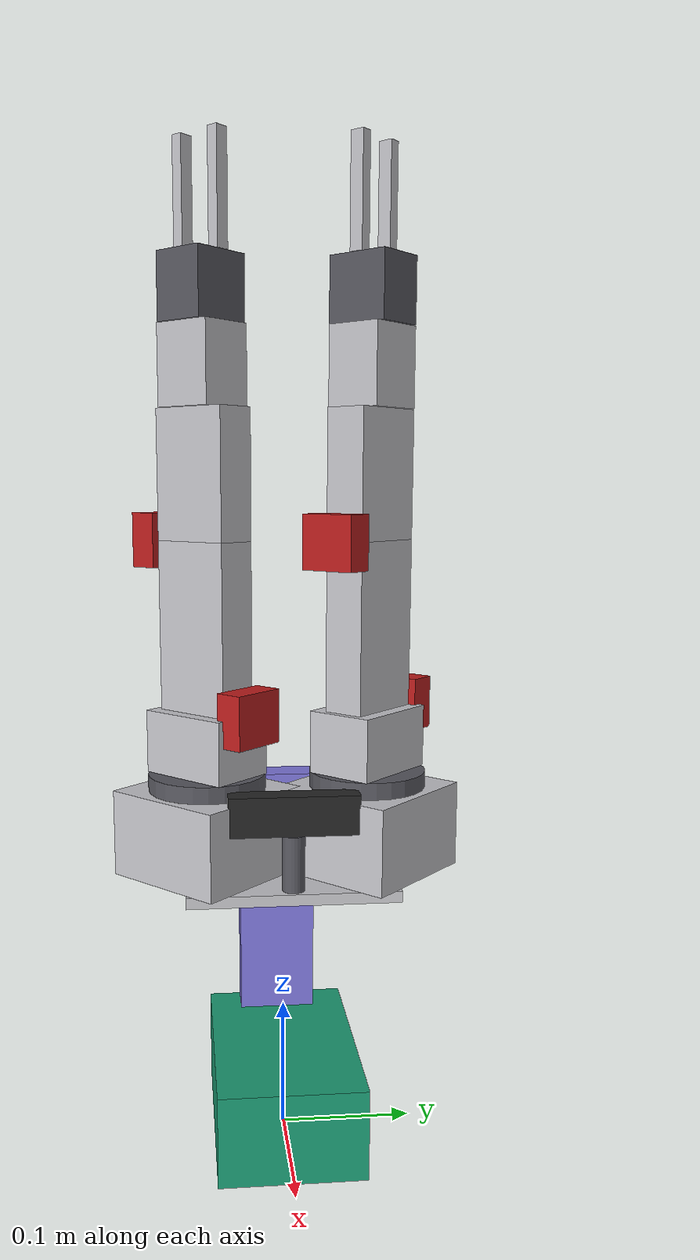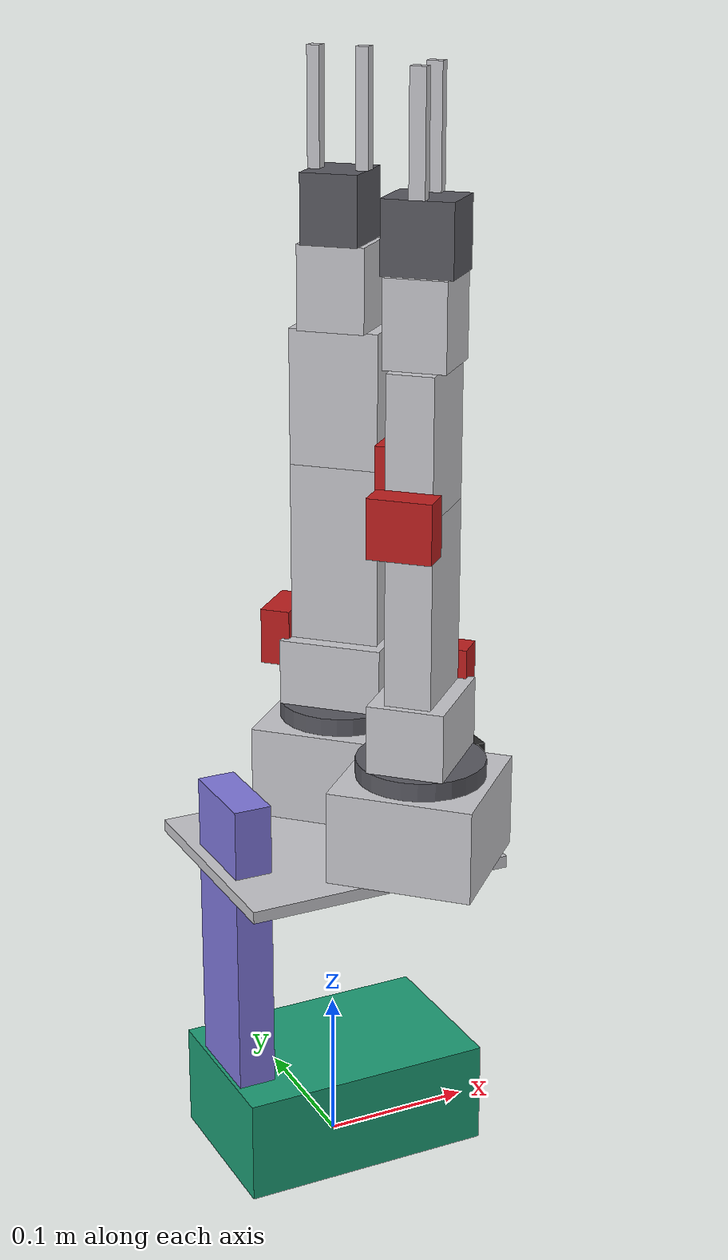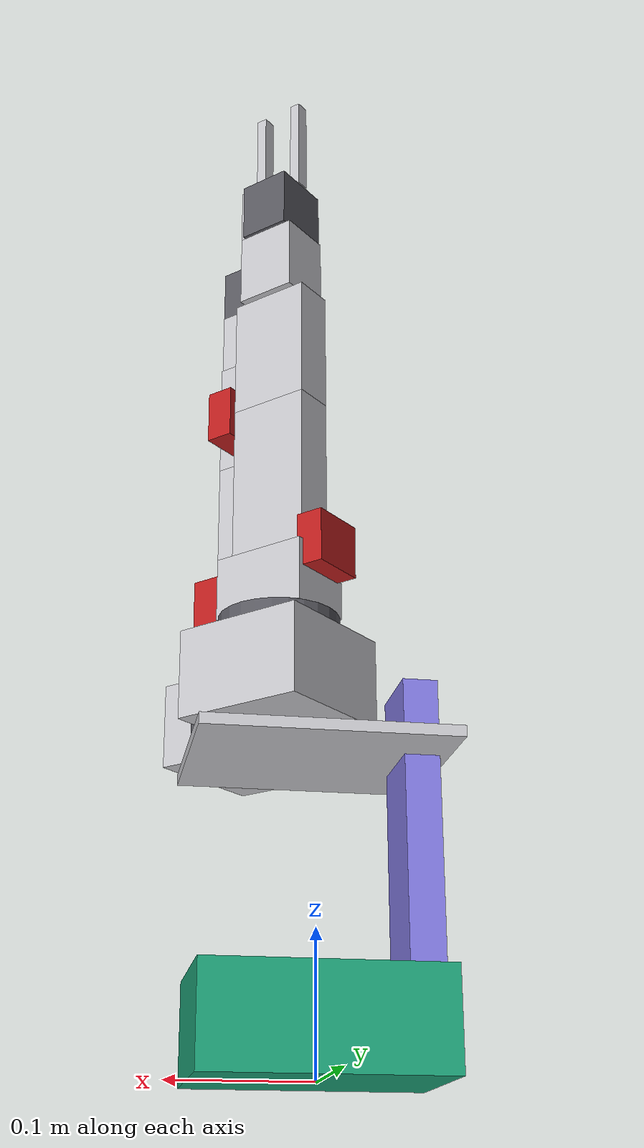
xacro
<?xml version="1.0"?>
<robot name="soma" xmlns:xacro="http://www.ros.org/wiki/xacro">
  <xacro:include filename="$(find soma_description)/urdf/soma_bench.urdf.xacro"/>
  <xacro:include filename="$(find soma_description)/urdf/soma_control.xacro"/>
  <xacro:soma_ros2_control/>
</robot>

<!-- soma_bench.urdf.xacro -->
<robot name="soma" xmlns:xacro="http://www.ros.org/wiki/xacro">

  <xacro:include filename="$(find soma_description)/urdf/materials.xacro"/>
  <xacro:include filename="$(find soma_description)/urdf/soma_arm.xacro"/>
  <xacro:include filename="$(find soma_description)/urdf/soma_torso.xacro"/>

  <link name="world"/>

  <xacro:soma_torso parent="world">
    <origin xyz="0 0 0" rpy="0 0 0"/>
  </xacro:soma_torso>

</robot>

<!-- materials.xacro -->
<robot xmlns:xacro="http://www.ros.org/wiki/xacro">
  <!-- SOMA palette. Kept in one place so every model looks the same. -->
  <material name="aluminum">
    <color rgba="0.78 0.78 0.80 1.0"/>
  </material>
  <material name="servo_red">
    <color rgba="0.75 0.12 0.12 1.0"/>
  </material>
  <material name="matte_black">
    <color rgba="0.15 0.15 0.15 1.0"/>
  </material>
  <material name="dark_gray">
    <color rgba="0.35 0.35 0.38 1.0"/>
  </material>
  <material name="soma_teal">
    <color rgba="0.11 0.62 0.46 1.0"/>
  </material>
  <material name="l16_purple">
    <color rgba="0.50 0.47 0.87 1.0"/>
  </material>
</robot>

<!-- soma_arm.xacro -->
<robot xmlns:xacro="http://www.ros.org/wiki/xacro">

  <!-- ==================== dimensions [calibrate] ==================== -->
  <xacro:property name="base_lx"        value="0.095"/>  <!-- base box, houses servo A -->
  <xacro:property name="base_ly"        value="0.095"/>
  <xacro:property name="base_lz"        value="0.062"/>
  <xacro:property name="turntable_r"    value="0.042"/>  <!-- disc on the slew bearing -->
  <xacro:property name="turntable_h"    value="0.012"/>
  <xacro:property name="shoulder_off_z" value="0.045"/>  <!-- disc to shoulder axis -->
  <xacro:property name="upper_len"      value="0.120"/>  <!-- shoulder to elbow -->
  <xacro:property name="fore_len"       value="0.090"/>  <!-- elbow to wrist pitch -->
  <xacro:property name="wrist_len"      value="0.055"/>  <!-- wrist pitch to roll flange -->
  <xacro:property name="gripper_base_h" value="0.045"/>  <!-- roll flange to finger axis -->
  <xacro:property name="finger_len"     value="0.075"/>  <!-- geared finger -->
  <xacro:property name="finger_sep"     value="0.024"/>  <!-- gear axis separation -->
  <xacro:property name="plate_w"        value="0.030"/>  <!-- link plate width -->
  <xacro:property name="plate_t"        value="0.060"/>  <!-- plate pair depth -->

  <!-- MG996R class servo, 40x20 body -->
  <xacro:property name="servo_lx" value="0.041"/>
  <xacro:property name="servo_ly" value="0.020"/>
  <xacro:property name="servo_lz" value="0.038"/>

  <!-- Limits: 180 degree servos, so +/- 90 from center. These MUST stay in
       sync with SERVO_MAP in soma_driver/servo_map.py. -->
  <xacro:property name="lim"        value="${pi/2}"/>
  <xacro:property name="effort_nm"  value="1.0"/>   <!-- MG996R ~10 kg.cm = 0.98 N.m -->
  <xacro:property name="vel_rads"   value="3.0"/>   <!-- ~0.17 s/60 deg plus margin -->

  <!-- ==================== inertia macros ==================== -->
  <xacro:macro name="box_inertia" params="m x y z">
    <inertial>
      <mass value="${m}"/>
      <inertia ixx="${m*(y*y+z*z)/12.0}" iyy="${m*(x*x+z*z)/12.0}"
               izz="${m*(x*x+y*y)/12.0}" ixy="0" ixz="0" iyz="0"/>
    </inertial>
  </xacro:macro>
  <xacro:macro name="cylinder_inertia" params="m r h">
    <inertial>
      <mass value="${m}"/>
      <inertia ixx="${m*(3*r*r+h*h)/12.0}" iyy="${m*(3*r*r+h*h)/12.0}"
               izz="${m*r*r/2.0}" ixy="0" ixz="0" iyz="0"/>
    </inertial>
  </xacro:macro>

  <!-- visual of a 40x20 servo (red box) -->
  <xacro:macro name="servo_visual" params="xyz rpy:='0 0 0'">
    <visual>
      <origin xyz="${xyz}" rpy="${rpy}"/>
      <geometry><box size="${servo_lx} ${servo_ly} ${servo_lz}"/></geometry>
      <material name="servo_red"/>
    </visual>
  </xacro:macro>

  <!-- ==================== the arm macro ==================== -->
  <xacro:macro name="soma_arm" params="prefix parent *origin">

    <!-- mount to the parent link -->
    <joint name="${prefix}mount_joint" type="fixed">
      <parent link="${parent}"/>
      <child link="${prefix}base_link"/>
      <xacro:insert_block name="origin"/>
    </joint>

    <!-- base: metal box holding servo A and the wiring -->
    <link name="${prefix}base_link">
      <visual>
        <origin xyz="0 0 ${base_lz/2}"/>
        <geometry><box size="${base_lx} ${base_ly} ${base_lz}"/></geometry>
        <material name="aluminum"/>
      </visual>
      <collision>
        <origin xyz="0 0 ${base_lz/2}"/>
        <geometry><box size="${base_lx} ${base_ly} ${base_lz}"/></geometry>
      </collision>
      <xacro:box_inertia m="0.25" x="${base_lx}" y="${base_ly}" z="${base_lz}"/>
    </link>

    <!-- A: base yaw on the slew bearing -->
    <joint name="${prefix}yaw_joint" type="revolute">
      <parent link="${prefix}base_link"/>
      <child link="${prefix}turntable_link"/>
      <origin xyz="0 0 ${base_lz}"/>
      <axis xyz="0 0 1"/>
      <limit lower="${-lim}" upper="${lim}" effort="${effort_nm}" velocity="${vel_rads}"/>
    </joint>

    <link name="${prefix}turntable_link">
      <visual>
        <origin xyz="0 0 ${turntable_h/2}"/>
        <geometry><cylinder radius="${turntable_r}" length="${turntable_h}"/></geometry>
        <material name="dark_gray"/>
      </visual>
      <!-- shoulder yoke -->
      <visual>
        <origin xyz="0 0 ${turntable_h + shoulder_off_z/2}"/>
        <geometry><box size="0.050 0.070 ${shoulder_off_z}"/></geometry>
        <material name="aluminum"/>
      </visual>
      <collision>
        <origin xyz="0 0 ${(turntable_h + shoulder_off_z)/2}"/>
        <geometry><box size="0.070 0.080 ${turntable_h + shoulder_off_z}"/></geometry>
      </collision>
      <xacro:box_inertia m="0.12" x="0.07" y="0.08" z="${turntable_h + shoulder_off_z}"/>
    </link>

    <!-- B: shoulder -->
    <joint name="${prefix}shoulder_joint" type="revolute">
      <parent link="${prefix}turntable_link"/>
      <child link="${prefix}upper_arm_link"/>
      <origin xyz="0 0 ${turntable_h + shoulder_off_z}"/>
      <axis xyz="0 1 0"/>
      <limit lower="${-lim}" upper="${lim}" effort="${effort_nm}" velocity="${vel_rads}"/>
    </joint>

    <link name="${prefix}upper_arm_link">
      <visual>
        <origin xyz="0 0 ${upper_len/2}"/>
        <geometry><box size="${plate_w} ${plate_t} ${upper_len}"/></geometry>
        <material name="aluminum"/>
      </visual>
      <xacro:servo_visual xyz="0 ${plate_t/2 + servo_ly/2} 0"/>
      <collision>
        <origin xyz="0 0 ${upper_len/2}"/>
        <geometry><box size="${plate_w} ${plate_t + 2*servo_ly} ${upper_len}"/></geometry>
      </collision>
      <xacro:box_inertia m="0.18" x="${plate_w}" y="${plate_t}" z="${upper_len}"/>
    </link>

    <!-- C: elbow (twin servo block, manual page 15) -->
    <joint name="${prefix}elbow_joint" type="revolute">
      <parent link="${prefix}upper_arm_link"/>
      <child link="${prefix}forearm_link"/>
      <origin xyz="0 0 ${upper_len}"/>
      <axis xyz="0 1 0"/>
      <limit lower="${-lim}" upper="${lim}" effort="${effort_nm}" velocity="${vel_rads}"/>
    </joint>

    <link name="${prefix}forearm_link">
      <visual>
        <origin xyz="0 0 ${fore_len/2}"/>
        <geometry><box size="${plate_w} ${plate_t} ${fore_len}"/></geometry>
        <material name="aluminum"/>
      </visual>
      <xacro:servo_visual xyz="0 ${-(plate_t/2 + servo_ly/2)} 0"/>
      <collision>
        <origin xyz="0 0 ${fore_len/2}"/>
        <geometry><box size="${plate_w} ${plate_t + 2*servo_ly} ${fore_len}"/></geometry>
      </collision>
      <xacro:box_inertia m="0.16" x="${plate_w}" y="${plate_t}" z="${fore_len}"/>
    </link>

    <!-- D: wrist pitch -->
    <joint name="${prefix}wrist_pitch_joint" type="revolute">
      <parent link="${prefix}forearm_link"/>
      <child link="${prefix}wrist_link"/>
      <origin xyz="0 0 ${fore_len}"/>
      <axis xyz="0 1 0"/>
      <limit lower="${-lim}" upper="${lim}" effort="${effort_nm}" velocity="${vel_rads}"/>
    </joint>

    <link name="${prefix}wrist_link">
      <visual>
        <origin xyz="0 0 ${wrist_len/2}"/>
        <geometry><box size="0.040 0.045 ${wrist_len}"/></geometry>
        <material name="aluminum"/>
      </visual>
      <collision>
        <origin xyz="0 0 ${wrist_len/2}"/>
        <geometry><box size="0.045 0.050 ${wrist_len}"/></geometry>
      </collision>
      <xacro:box_inertia m="0.09" x="0.04" y="0.045" z="${wrist_len}"/>
    </link>

    <!-- E: wrist roll (spins the gripper about the arm axis) -->
    <joint name="${prefix}wrist_roll_joint" type="revolute">
      <parent link="${prefix}wrist_link"/>
      <child link="${prefix}gripper_base_link"/>
      <origin xyz="0 0 ${wrist_len}"/>
      <axis xyz="0 0 1"/>
      <limit lower="${-lim}" upper="${lim}" effort="${effort_nm}" velocity="${vel_rads}"/>
    </joint>

    <link name="${prefix}gripper_base_link">
      <visual>
        <origin xyz="0 0 ${gripper_base_h/2}"/>
        <geometry><box size="0.045 0.038 ${gripper_base_h}"/></geometry>
        <material name="dark_gray"/>
      </visual>
      <collision>
        <origin xyz="0 0 ${gripper_base_h/2}"/>
        <geometry><box size="0.045 0.038 ${gripper_base_h}"/></geometry>
      </collision>
      <xacro:box_inertia m="0.10" x="0.045" y="0.038" z="${gripper_base_h}"/>
    </link>

    <!-- F: geared gripper. Left finger is driven, right one mirrors it. -->
    <joint name="${prefix}finger_l_joint" type="revolute">
      <parent link="${prefix}gripper_base_link"/>
      <child link="${prefix}finger_l_link"/>
      <origin xyz="0 ${finger_sep/2} ${gripper_base_h}"/>
      <axis xyz="1 0 0"/>
      <limit lower="0.0" upper="1.0" effort="${effort_nm}" velocity="${vel_rads}"/>
    </joint>
    <link name="${prefix}finger_l_link">
      <visual>
        <origin xyz="0 0.004 ${finger_len/2}"/>
        <geometry><box size="0.010 0.008 ${finger_len}"/></geometry>
        <material name="aluminum"/>
      </visual>
      <collision>
        <origin xyz="0 0.004 ${finger_len/2}"/>
        <geometry><box size="0.010 0.008 ${finger_len}"/></geometry>
      </collision>
      <xacro:box_inertia m="0.02" x="0.01" y="0.008" z="${finger_len}"/>
    </link>

    <joint name="${prefix}finger_r_joint" type="revolute">
      <parent link="${prefix}gripper_base_link"/>
      <child link="${prefix}finger_r_link"/>
      <origin xyz="0 ${-finger_sep/2} ${gripper_base_h}"/>
      <axis xyz="1 0 0"/>
      <limit lower="-1.0" upper="0.0" effort="${effort_nm}" velocity="${vel_rads}"/>
      <mimic joint="${prefix}finger_l_joint" multiplier="-1.0"/>
    </joint>
    <link name="${prefix}finger_r_link">
      <visual>
        <origin xyz="0 -0.004 ${finger_len/2}"/>
        <geometry><box size="0.010 0.008 ${finger_len}"/></geometry>
        <material name="aluminum"/>
      </visual>
      <collision>
        <origin xyz="0 -0.004 ${finger_len/2}"/>
        <geometry><box size="0.010 0.008 ${finger_len}"/></geometry>
      </collision>
      <xacro:box_inertia m="0.02" x="0.01" y="0.008" z="${finger_len}"/>
    </link>

    <!-- tool frame (gripper tip, the IK target for MoveIt2) -->
    <joint name="${prefix}tool0_joint" type="fixed">
      <parent link="${prefix}gripper_base_link"/>
      <child link="${prefix}tool0"/>
      <origin xyz="0 0 ${gripper_base_h + finger_len}"/>
    </joint>
    <link name="${prefix}tool0"/>

  </xacro:macro>
</robot>

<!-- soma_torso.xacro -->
<robot xmlns:xacro="http://www.ros.org/wiki/xacro">

  <!-- ============ electronics bay [calibrate] ============ -->
  <xacro:property name="bay_lx"      value="0.170"/>
  <xacro:property name="bay_ly"      value="0.110"/>
  <xacro:property name="bay_lz"      value="0.070"/>
  <xacro:property name="col_h"       value="0.200"/>  <!-- column plus 8 mm rails -->

  <!-- ============ L16-140 lift ============ -->
  <xacro:property name="lift_stroke" value="0.140"/>
  <xacro:property name="lift_margin" value="0.005"/>
  <xacro:property name="lift_min"    value="${lift_margin}"/>
  <xacro:property name="lift_max"    value="${lift_stroke - lift_margin}"/>

  <!-- ============ torso plate and arm placement [calibrate] ============ -->
  <xacro:property name="plate_lx"    value="0.180"/>
  <xacro:property name="plate_ly"    value="0.150"/>
  <xacro:property name="plate_lz"    value="0.008"/>
  <xacro:property name="arm_x"       value="0.035"/>  <!-- shoulders on the plate -->
  <xacro:property name="arm_y"       value="0.058"/>
  <xacro:property name="arm_yaw"     value="${pi/4}"/> <!-- +/- 45 deg -->

  <xacro:macro name="torso_box_inertia" params="m x y z">
    <inertial>
      <mass value="${m}"/>
      <inertia ixx="${m*(y*y+z*z)/12.0}" iyy="${m*(x*x+z*z)/12.0}"
               izz="${m*(x*x+y*y)/12.0}" ixy="0" ixz="0" iyz="0"/>
    </inertial>
  </xacro:macro>

  <xacro:macro name="soma_torso" params="parent *origin">

    <!-- anchor to whatever we are standing on -->
    <joint name="soma_mount_joint" type="fixed">
      <parent link="${parent}"/>
      <child link="soma_base_link"/>
      <xacro:insert_block name="origin"/>
    </joint>

    <link name="soma_base_link">
      <!-- bay: Raspberry Pi 5, PCA9685, 6 V rail -->
      <visual>
        <origin xyz="0 0 ${bay_lz/2}"/>
        <geometry><box size="${bay_lx} ${bay_ly} ${bay_lz}"/></geometry>
        <material name="soma_teal"/>
      </visual>
      <!-- L16 column and rails, rising from the bay -->
      <visual>
        <origin xyz="${-bay_lx/2 + 0.015} 0 ${bay_lz + col_h/2}"/>
        <geometry><box size="0.025 0.060 ${col_h}"/></geometry>
        <material name="l16_purple"/>
      </visual>
      <collision>
        <origin xyz="0 0 ${bay_lz/2}"/>
        <geometry><box size="${bay_lx} ${bay_ly} ${bay_lz}"/></geometry>
      </collision>
      <collision>
        <origin xyz="${-bay_lx/2 + 0.015} 0 ${bay_lz + col_h/2}"/>
        <geometry><box size="0.025 0.060 ${col_h}"/></geometry>
      </collision>
      <xacro:torso_box_inertia m="2.0" x="${bay_lx}" y="${bay_ly}" z="${bay_lz}"/>
    </link>

    <!-- the star joint: torso_lift (Actuonix L16-140-63-6-R) -->
    <joint name="torso_lift_joint" type="prismatic">
      <parent link="soma_base_link"/>
      <child link="torso_plate_link"/>
      <origin xyz="0 0 ${bay_lz + 0.075}"/>
      <axis xyz="0 0 1"/>
      <limit lower="${lift_min}" upper="${lift_max}" effort="100.0" velocity="0.020"/>
    </joint>

    <link name="torso_plate_link">
      <visual>
        <origin xyz="0 0 ${plate_lz/2}"/>
        <geometry><box size="${plate_lx} ${plate_ly} ${plate_lz}"/></geometry>
        <material name="aluminum"/>
      </visual>
      <collision>
        <origin xyz="0 0 ${plate_lz/2}"/>
        <geometry><box size="${plate_lx} ${plate_ly} ${plate_lz}"/></geometry>
      </collision>
      <xacro:torso_box_inertia m="0.45" x="${plate_lx}" y="${plate_ly}" z="0.02"/>
    </link>

    <!-- OAK-D Lite, the head. Rides up with the torso and looks forward.
         This is the camera that runs BlazePose on its own VPU for the
         vision teleop milestone (v0.5). -->
    <joint name="oak_joint" type="fixed">
      <parent link="torso_plate_link"/>
      <child link="oak_link"/>
      <origin xyz="${plate_lx/2 - 0.010} 0 ${plate_lz + 0.055}"/>
    </joint>
    <link name="oak_link">
      <visual>
        <geometry><box size="0.0175 0.091 0.028"/></geometry>
        <material name="matte_black"/>
      </visual>
      <collision>
        <geometry><box size="0.0175 0.091 0.028"/></geometry>
      </collision>
      <inertial>
        <mass value="0.061"/>
        <inertia ixx="1e-5" iyy="1e-5" izz="1e-5" ixy="0" ixz="0" iyz="0"/>
      </inertial>
    </link>

    <joint name="neck_joint" type="fixed">
      <parent link="torso_plate_link"/>
      <child link="neck_link"/>
      <origin xyz="${plate_lx/2 - 0.010} 0 ${plate_lz + 0.020}"/>
    </joint>
    <link name="neck_link">
      <visual>
        <geometry><cylinder radius="0.008" length="0.040"/></geometry>
        <material name="dark_gray"/>
      </visual>
      <inertial>
        <mass value="0.02"/>
        <inertia ixx="1e-6" iyy="1e-6" izz="1e-6" ixy="0" ixz="0" iyz="0"/>
      </inertial>
    </link>

    <!-- the two arms, splayed at +/- 45 deg -->
    <xacro:soma_arm prefix="left_arm_" parent="torso_plate_link">
      <origin xyz="${arm_x} ${arm_y} ${plate_lz}" rpy="0 0 ${arm_yaw}"/>
    </xacro:soma_arm>

    <xacro:soma_arm prefix="right_arm_" parent="torso_plate_link">
      <origin xyz="${arm_x} ${-arm_y} ${plate_lz}" rpy="0 0 ${-arm_yaw}"/>
    </xacro:soma_arm>

  </xacro:macro>
</robot>
